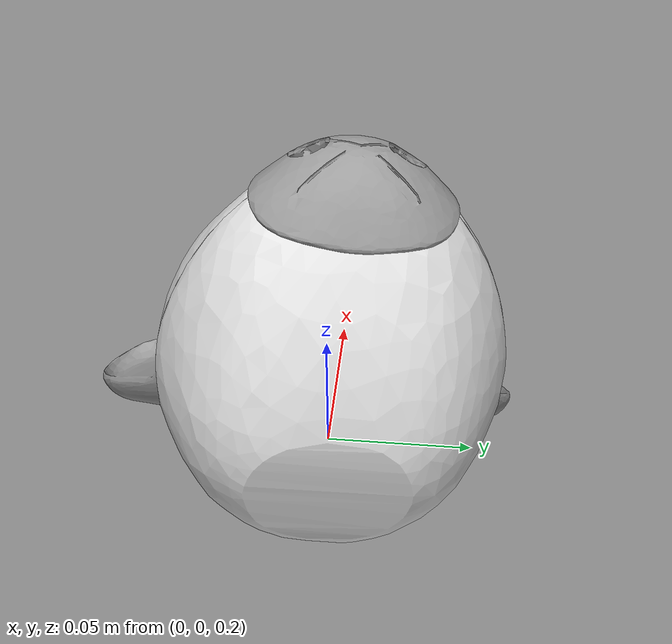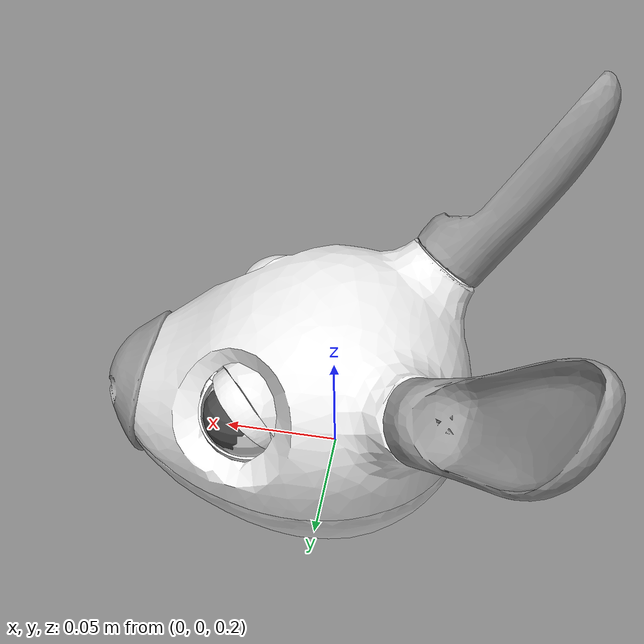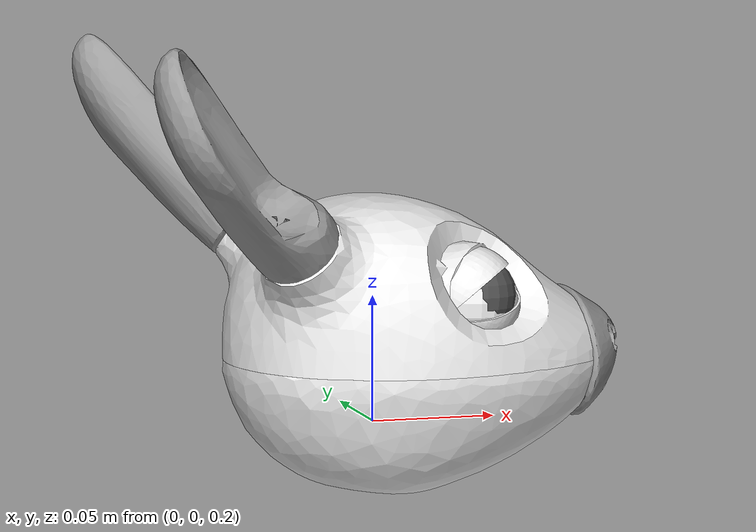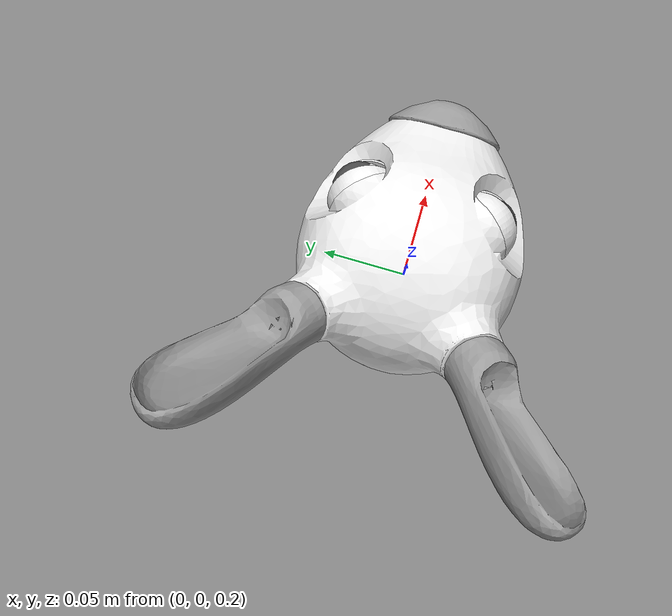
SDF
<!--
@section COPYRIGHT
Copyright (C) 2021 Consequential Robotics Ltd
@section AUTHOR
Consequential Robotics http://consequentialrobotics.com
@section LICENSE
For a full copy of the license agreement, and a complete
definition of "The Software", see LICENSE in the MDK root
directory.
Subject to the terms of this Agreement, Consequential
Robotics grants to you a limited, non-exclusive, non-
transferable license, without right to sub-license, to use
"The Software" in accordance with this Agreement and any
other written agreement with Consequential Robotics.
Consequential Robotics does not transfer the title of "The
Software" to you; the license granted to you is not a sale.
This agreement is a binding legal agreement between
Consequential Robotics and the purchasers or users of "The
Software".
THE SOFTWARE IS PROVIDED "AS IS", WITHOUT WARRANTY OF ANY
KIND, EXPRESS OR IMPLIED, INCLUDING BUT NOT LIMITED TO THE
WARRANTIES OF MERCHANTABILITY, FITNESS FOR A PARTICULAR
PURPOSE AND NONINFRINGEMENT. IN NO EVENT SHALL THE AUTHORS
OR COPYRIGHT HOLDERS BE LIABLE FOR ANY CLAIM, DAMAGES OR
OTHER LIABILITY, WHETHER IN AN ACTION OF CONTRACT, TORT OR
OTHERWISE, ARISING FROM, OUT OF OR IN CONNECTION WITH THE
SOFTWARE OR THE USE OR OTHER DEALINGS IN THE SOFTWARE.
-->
<?xml version="1.0"?>
<sdf version="1.5">
	<model name="miro_head">
		<link name="head">
			<inertial>
				<pose>-0.002 0 0.221 0 0 0</pose>
				<mass>0.261799</mass>
				<inertia>
					<ixx>0.00043633</ixx>
					<ixy>0.0</ixy>
					<ixz>0.0</ixz>
					<iyy>0.00043633</iyy>
					<iyz>0.0</iyz>
					<izz>0.00043633</izz>
				</inertia>
			</inertial>
			<visual name="visual_head_lower">
				<pose>0 0 0 0 0 0</pose>
				<geometry>
					<mesh>
						<uri>model://miro_model/meshes/head_lower.dae</uri>
					</mesh>
				</geometry>
				<material>
					<script>
						<uri>file://media/materials/scripts/gazebo.material</uri>
						<name>Gazebo/White</name>
					</script>
				</material>
			</visual>
			<collision name="collision_head_lower">
				<pose>0 0 0 0 0 0</pose>
				<geometry>
					<mesh>
						<uri>model://miro_model/meshes/head_lower_collision.dae</uri>
					</mesh>
				</geometry>
				<surface>
					<friction>
						<ode>
							<mu>0.1</mu>
							<mu2>0.1</mu2>
						</ode>
					</friction>
				</surface>
			</collision>
			<visual name="visual_head_upper">
				<pose>0 0 0 0 0 0</pose>
				<geometry>
					<mesh>
						<uri>model://miro_model/meshes/head_upper.dae</uri>
					</mesh>
				</geometry>
				<material>
					<script>
						<uri>file://media/materials/scripts/gazebo.material</uri>
						<name>Gazebo/White</name>
					</script>
				</material>
			</visual>
			<collision name="collision_head_upper">
				<pose>0 0 0 0 0 0</pose>
				<geometry>
					<mesh>
						<uri>model://miro_model/meshes/head_upper_collision.dae</uri>
					</mesh>
				</geometry>
				<surface>
					<friction>
						<ode>
							<mu>0.1</mu>
							<mu2>0.1</mu2>
						</ode>
					</friction>
				</surface>
			</collision>
			<visual name="visual_eyelid_lower_lh">
				<pose>0 0 0 0 0 0</pose>
				<geometry>
					<mesh>
						<uri>model://miro_model/meshes/eyelid_lower_lh.dae</uri>
					</mesh>
				</geometry>
				<material>
					<script>
						<uri>file://media/materials/scripts/gazebo.material</uri>
						<name>Gazebo/White</name>
					</script>
				</material>
			</visual>
			<visual name="visual_eyelid_lower_rh">
				<pose>0 0 0 0 0 0</pose>
				<geometry>
					<mesh>
						<uri>model://miro_model/meshes/eyelid_lower_rh.dae</uri>
					</mesh>
				</geometry>
				<material>
					<script>
						<uri>file://media/materials/scripts/gazebo.material</uri>
						<name>Gazebo/White</name>
					</script>
				</material>
			</visual>
			<visual name="visual_nose">
				<pose>0 0 0 0 0 0</pose>
				<geometry>
					<mesh>
						<uri>model://miro_model/meshes/nose.dae</uri>
					</mesh>
				</geometry>
				<material>
					<script>
						<uri>file://media/materials/scripts/gazebo.material</uri>
						<name>Gazebo/Grey</name>
					</script>
				</material>
			</visual>
			<collision name="collision_nose">
				<pose>0 0 0 0 0 0</pose>
				<geometry>
					<mesh>
						<uri>model://miro_model/meshes/nose_collision.dae</uri>
					</mesh>
				</geometry>
				<surface>
					<friction>
						<ode>
							<mu>0.3</mu>
							<mu2>0.3</mu2>
						</ode>
					</friction>
				</surface>
			</collision>
			<visual name="visual_1">
				<pose>0.029 0.033 0.252 0 0 0</pose>
				<geometry>
					<sphere>
						<radius>0.018</radius>
					</sphere>
				</geometry>
				<material>
					<script>
						<uri>file://media/materials/scripts/gazebo.material</uri>
						<name>Gazebo/White</name>
					</script>
				</material>
			</visual>
			<visual name="visual_2">
				<pose>0.0315 0.036 0.254 0 0 0</pose>
				<geometry>
					<sphere>
						<radius>0.015</radius>
					</sphere>
				</geometry>
				<material>
					<script>
						<uri>file://media/materials/scripts/gazebo.material</uri>
						<name>Gazebo/DarkGrey</name>
					</script>
				</material>
			</visual>
			<visual name="visual_3">
				<pose>0.029 -0.033 0.252 0 0 0</pose>
				<geometry>
					<sphere>
						<radius>0.018</radius>
					</sphere>
				</geometry>
				<material>
					<script>
						<uri>file://media/materials/scripts/gazebo.material</uri>
						<name>Gazebo/White</name>
					</script>
				</material>
			</visual>
			<visual name="visual_4">
				<pose>0.0315 -0.036 0.254 0 0 0</pose>
				<geometry>
					<sphere>
						<radius>0.015</radius>
					</sphere>
				</geometry>
				<material>
					<script>
						<uri>file://media/materials/scripts/gazebo.material</uri>
						<name>Gazebo/DarkGrey</name>
					</script>
				</material>
			</visual>
			<!-- eye_l -->
			<sensor name="eye_l" type="wideanglecamera">
				<!-- pose position come from miro_software_constants.h -->
				<!-- pose angles come from dev/sim_camera_calib -->
				<pose>0.0377 0.0431 0.2595 -0.4262 -0.6816 0.6244</pose>
				<camera>
					<horizontal_fov>2.0944</horizontal_fov>
					<image>
						<width>1280</width>
						<height>720</height>
					</image>
					<clip>
						<!-- clip at short range to eliminate eyelid from view -->
						<near>0.006</near>
						<far>100</far>
					</clip>
					<lens>
						<type>custom</type>
						<scale_to_hfov>1</scale_to_hfov>
						<custom_function>
							<c1>2.0</c1>
							<c2>1.25</c2>
							<c3>0.0</c3>
							<f>1.0</f>
							<fun>sin</fun>
						</custom_function>
					</lens>
				</camera>
				<always_on>1</always_on>
				<update_rate>10</update_rate>
				<visualize>false</visualize>
			</sensor>
			<!-- eye_r -->
			<sensor name="eye_r" type="wideanglecamera">
				<pose>0.0377 -0.0431 0.2595 0.4261 -0.6816 -0.6244</pose>
				<camera>
					<horizontal_fov>2.0944</horizontal_fov>
					<image>
						<width>1280</width>
						<height>720</height>
					</image>
					<clip>
						<near>0.006</near>
						<far>100</far>
					</clip>
					<lens>
						<type>custom</type>
						<scale_to_hfov>1</scale_to_hfov>
						<custom_function>
							<c1>2.0</c1>
							<c2>1.25</c2>
							<c3>0.0</c3>
							<f>1.0</f>
							<fun>sin</fun>
						</custom_function>
					</lens>
				</camera>
				<always_on>1</always_on>
				<update_rate>10</update_rate>
				<visualize>false</visualize>
			</sensor>
			<!-- eye_l narrow -->
			<sensor name="eye_l_narrow" type="camera">
				<!-- pose position come from miro_software_constants.h -->
				<!-- pose angles come from dev/sim_camera_calib -->
				<pose>0.0377 0.0431 0.2595 -0.4262 -0.6816 0.6244</pose>
				<camera>
					<horizontal_fov>2.0944</horizontal_fov>
					<image>
						<width>1280</width>
						<height>720</height>
					</image>
					<clip>
						<!-- clip at short range to eliminate eyelid from view -->
						<near>0.006</near>
						<far>100</far>
					</clip>
				</camera>
				<always_on>1</always_on>
				<update_rate>10</update_rate>
				<visualize>false</visualize>
			</sensor>
			<!-- eye_r_narrow -->
			<sensor name="eye_r_narrow" type="camera">
				<pose>0.0377 -0.0431 0.2595 0.4261 -0.6816 -0.6244</pose>
				<camera>
					<horizontal_fov>2.0944</horizontal_fov>
					<image>
						<width>1280</width>
						<height>720</height>
					</image>
					<clip>
						<near>0.006</near>
						<far>100</far>
					</clip>
				</camera>
				<always_on>1</always_on>
				<update_rate>10</update_rate>
				<visualize>false</visualize>
			</sensor>
			<!-- gaze -->
			<sensor name="gaze" type="camera">
				<pose>0.0577 0 0.2795 0 -0.785398 0</pose>
				<camera>
					<horizontal_fov>1.0</horizontal_fov>
					<image>
						<width>1280</width>
						<height>720</height>
					</image>
					<clip>
						<near>0.001</near>
						<far>100</far>
					</clip>
				</camera>
				<always_on>1</always_on>
				<update_rate>10</update_rate>
				<visualize>false</visualize>
			</sensor>
			<!-- overhead -->
			<sensor name="overhead" type="camera">
				<pose>0 0 1.0 0 1.22 0</pose>
				<camera>
					<horizontal_fov>1.0472</horizontal_fov>
					<image>
						<width>1280</width>
						<height>720</height>
					</image>
					<clip>
						<near>0.01</near>
						<far>2</far>
					</clip>
				</camera>
				<always_on>1</always_on>
				<update_rate>10</update_rate>
				<visualize>false</visualize>
			</sensor>
			<!-- imu -->
			<sensor name="acc_head" type="imu">
				<pose>0 0 0 0 0 0</pose>
				<always_on>1</always_on>
				<update_rate>50</update_rate>
				<visualize>false</visualize>
			</sensor>
			<!-- sonar -->
			<sensor name="sonar" type="sonar">
				<pose>0.1 0 0.235 0 -1.5708 0</pose>
				<always_on>1</always_on>
				<update_rate>50</update_rate>
				<visualize>false</visualize>
				<sonar>
					<min>0.0</min>
					<max>1.0</max>
					<radius>0.309</radius>
				</sonar>
			</sensor>
		</link>
		<link name="eyelid_lh">
			<inertial>
				<pose>0.029 0.032 0.252 0 0 0</pose>
				<mass>0.016755</mass>
				<inertia>
					<ixx>0.00000447</ixx>
					<ixy>0.0</ixy>
					<ixz>0.0</ixz>
					<iyy>0.00000447</iyy>
					<iyz>0.0</iyz>
					<izz>0.00000447</izz>
				</inertia>
			</inertial>
			<visual name="visual_eyelid_lh">
				<pose>0 0 0 0 0 0</pose>
				<geometry>
					<mesh>
						<uri>model://miro_model/meshes/eyelid_lh.dae</uri>
					</mesh>
				</geometry>
				<material>
					<script>
						<uri>file://media/materials/scripts/gazebo.material</uri>
						<name>Gazebo/White</name>
					</script>
				</material>
			</visual>
		</link>
		<link name="eyelid_rh">
			<inertial>
				<pose>0.029 -0.032 0.252 0 0 0</pose>
				<mass>0.016755</mass>
				<inertia>
					<ixx>0.00000447</ixx>
					<ixy>0.0</ixy>
					<ixz>0.0</ixz>
					<iyy>0.00000447</iyy>
					<iyz>0.0</iyz>
					<izz>0.00000447</izz>
				</inertia>
			</inertial>
			<visual name="visual_eyelid_rh">
				<pose>0 0 0 0 0 0</pose>
				<geometry>
					<mesh>
						<uri>model://miro_model/meshes/eyelid_rh.dae</uri>
					</mesh>
				</geometry>
				<material>
					<script>
						<uri>file://media/materials/scripts/gazebo.material</uri>
						<name>Gazebo/White</name>
					</script>
				</material>
			</visual>
		</link>
		<!-- joint axes are from "eyelid axes.txt" in FreeCAD source folder -->
		<joint type="revolute" name="head_eyelid_lh">
			<pose>0.029 0.032 0.252 0 0 0</pose>
			<parent>head</parent>
			<child>eyelid_lh</child>
			<axis>
				<xyz>-0.675 0.675 -0.2978</xyz>
				<limit>
					<lower>-1.57</lower>
					<upper>1.57</upper>
				</limit>
				<dynamics>
					<friction>0.1</friction>
					<damping>0.1</damping>
					<spring_reference>-0.5</spring_reference>
					<spring_stiffness>0.02</spring_stiffness>
				</dynamics>
			</axis>
			<physics>
				<ode>
					<cfm_damping>true</cfm_damping>
					<implicit_spring_damper>true</implicit_spring_damper>
				</ode>
			</physics>
		</joint>
		<joint type="revolute" name="head_eyelid_rh">
			<pose>0.029 -0.032 0.252 0 0 0</pose>
			<parent>head</parent>
			<child>eyelid_rh</child>
			<axis>
				<xyz>0.675 0.675 0.2978</xyz>
				<limit>
					<lower>-1.57</lower>
					<upper>1.57</upper>
				</limit>
				<dynamics>
					<friction>0.1</friction>
					<damping>0.1</damping>
					<spring_reference>-0.5</spring_reference>
					<spring_stiffness>0.02</spring_stiffness>
				</dynamics>
			</axis>
			<physics>
				<ode>
					<cfm_damping>true</cfm_damping>
					<implicit_spring_damper>true</implicit_spring_damper>
				</ode>
			</physics>
		</joint>
		<link name="ear_lh">
			<inertial>
				<pose>-0.0437 0.0474 0.2773 0 0 0</pose>
				<mass>0.056549</mass>
				<inertia>
					<ixx>0.00003393</ixx>
					<ixy>0.0</ixy>
					<ixz>0.0</ixz>
					<iyy>0.00003393</iyy>
					<iyz>0.0</iyz>
					<izz>0.00003393</izz>
				</inertia>
			</inertial>
			<visual name="visual_ear_lh">
				<pose>0 0 0 0 0 0</pose>
				<geometry>
					<mesh>
						<uri>model://miro_model/meshes/ear_lh.dae</uri>
					</mesh>
				</geometry>
				<material>
					<script>
						<uri>file://media/materials/scripts/gazebo.material</uri>
						<name>Gazebo/Grey</name>
					</script>
				</material>
			</visual>
			<collision name="collision_ear_lh">
				<pose>0 0 0 0 0 0</pose>
				<geometry>
					<mesh>
						<uri>model://miro_model/meshes/ear_lh_collision.dae</uri>
					</mesh>
				</geometry>
				<surface>
					<friction>
						<ode>
							<mu>0.3</mu>
							<mu2>0.3</mu2>
						</ode>
					</friction>
				</surface>
			</collision>
		</link>
		<link name="ear_rh">
			<inertial>
				<pose>-0.0437 -0.0474 0.2773 0 0 0</pose>
				<mass>0.056549</mass>
				<inertia>
					<ixx>0.00003393</ixx>
					<ixy>0.0</ixy>
					<ixz>0.0</ixz>
					<iyy>0.00003393</iyy>
					<iyz>0.0</iyz>
					<izz>0.00003393</izz>
				</inertia>
			</inertial>
			<visual name="visual_ear_rh">
				<pose>0 0 0 0 0 0</pose>
				<geometry>
					<mesh>
						<uri>model://miro_model/meshes/ear_rh.dae</uri>
					</mesh>
				</geometry>
				<material>
					<script>
						<uri>file://media/materials/scripts/gazebo.material</uri>
						<name>Gazebo/Grey</name>
					</script>
				</material>
			</visual>
			<collision name="collision_ear_rh">
				<pose>0 0 0 0 0 0</pose>
				<geometry>
					<mesh>
						<uri>model://miro_model/meshes/ear_rh_collision.dae</uri>
					</mesh>
				</geometry>
				<surface>
					<friction>
						<ode>
							<mu>0.3</mu>
							<mu2>0.3</mu2>
						</ode>
					</friction>
				</surface>
			</collision>
		</link>
		<joint type="revolute" name="head_ear_lh">
			<pose>-0.0437 0.0474 0.2773 0 0 0</pose>
			<parent>head</parent>
			<child>ear_lh</child>
			<axis>
				<xyz>-0.5730 0.4344 0.6949</xyz>
				<limit>
					<lower>-1.57</lower>
					<upper>1.57</upper>
				</limit>
				<dynamics>
					<friction>0.01</friction>
					<damping>0.001</damping>
				</dynamics>
			</axis>
		</joint>
		<joint type="revolute" name="head_ear_rh">
			<pose>-0.0437 -0.0474 0.2773 0 0 0</pose>
			<parent>head</parent>
			<child>ear_rh</child>
			<axis>
				<xyz>-0.5730 -0.4344 0.6949</xyz>
				<limit>
					<lower>-1.57</lower>
					<upper>1.57</upper>
				</limit>
				<dynamics>
					<friction>0.01</friction>
					<damping>0.001</damping>
				</dynamics>
			</axis>
		</joint>
	</model>
</sdf>
